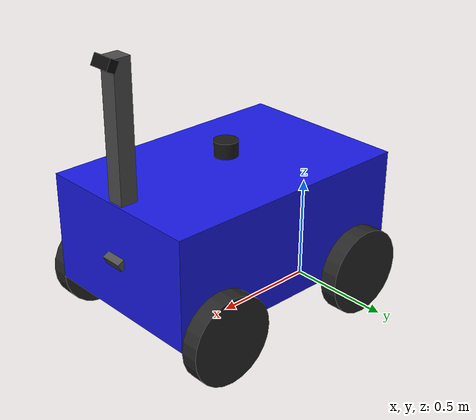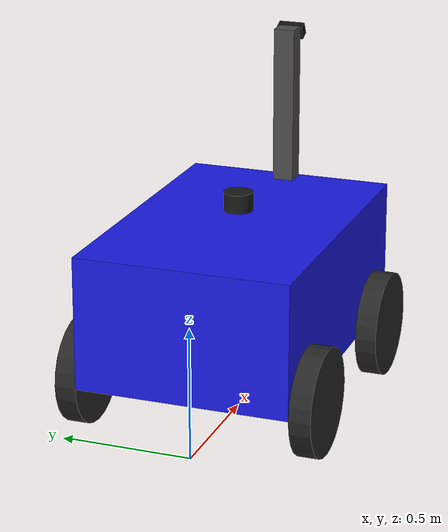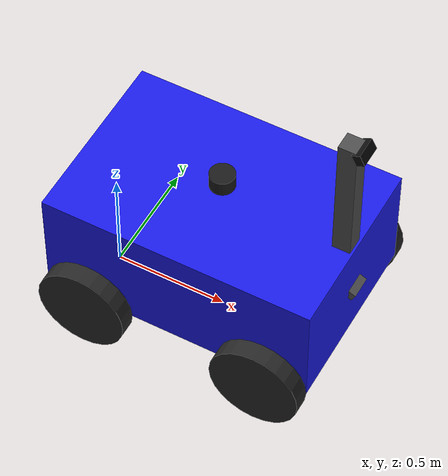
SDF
<?xml version="1.0" ?>
<sdf version="1.10">
  <model name='robot' canonical_link='body'>

    <!-- ===== BODY ===== -->
    <link name='body'>
      <pose relative_to='__model__'>0.5 0 0.5 0 0 0</pose>
      <inertial>
        <mass>50</mass>
        <inertia>
          <ixx>3.708333</ixx><ixy>0</ixy><ixz>0</ixz>
          <iyy>7.041667</iyy><iyz>0</iyz>
          <izz>8.666667</izz>
        </inertia>
      </inertial>
      <visual name='visual'>
        <geometry><box><size>1.2 0.8 0.5</size></box></geometry>
        <material>
          <ambient>0.1 0.1 0.6 1</ambient>
          <diffuse>0.1 0.1 0.9 1</diffuse>
        </material>
      </visual>
      <collision name='collision'>
        <geometry><box><size>1.2 0.8 0.5</size></box></geometry>
      </collision>
    </link>

    <!-- ===== WHEELS ===== -->
    <link name='front_left_wheel'>
      <pose relative_to="body">0.40 0.44 -0.25 -1.5707 0 0</pose>
      <inertial>
        <mass>3</mass>
        <inertia><ixx>0.0316</ixx><ixy>0</ixy><ixz>0</ixz>
                 <iyy>0.0316</iyy><iyz>0</iyz><izz>0.06</izz></inertia>
      </inertial>
      <visual name='visual'>
        <geometry><cylinder><radius>0.2</radius><length>0.08</length></cylinder></geometry>
        <material><ambient>0.15 0.15 0.15 1</ambient><diffuse>0.15 0.15 0.15 1</diffuse></material>
      </visual>
      <collision name='collision'>
        <geometry><cylinder><radius>0.2</radius><length>0.08</length></cylinder></geometry>
        <surface><friction><ode><mu>1.0</mu><mu2>1.0</mu2></ode></friction></surface>
      </collision>
    </link>

    <link name='front_right_wheel'>
      <pose relative_to="body">0.40 -0.44 -0.25 -1.5707 0 0</pose>
      <inertial>
        <mass>3</mass>
        <inertia><ixx>0.0316</ixx><ixy>0</ixy><ixz>0</ixz>
                 <iyy>0.0316</iyy><iyz>0</iyz><izz>0.06</izz></inertia>
      </inertial>
      <visual name='visual'>
        <geometry><cylinder><radius>0.2</radius><length>0.08</length></cylinder></geometry>
        <material><ambient>0.15 0.15 0.15 1</ambient><diffuse>0.15 0.15 0.15 1</diffuse></material>
      </visual>
      <collision name='collision'>
        <geometry><cylinder><radius>0.2</radius><length>0.08</length></cylinder></geometry>
        <surface><friction><ode><mu>1.0</mu><mu2>1.0</mu2></ode></friction></surface>
      </collision>
    </link>

    <link name='back_left_wheel'>
      <pose relative_to="body">-0.40 0.44 -0.25 -1.5707 0 0</pose>
      <inertial>
        <mass>3</mass>
        <inertia><ixx>0.0316</ixx><ixy>0</ixy><ixz>0</ixz>
                 <iyy>0.0316</iyy><iyz>0</iyz><izz>0.06</izz></inertia>
      </inertial>
      <visual name='visual'>
        <geometry><cylinder><radius>0.2</radius><length>0.08</length></cylinder></geometry>
        <material><ambient>0.15 0.15 0.15 1</ambient><diffuse>0.15 0.15 0.15 1</diffuse></material>
      </visual>
      <collision name='collision'>
        <geometry><cylinder><radius>0.2</radius><length>0.08</length></cylinder></geometry>
        <surface><friction><ode><mu>1.0</mu><mu2>1.0</mu2></ode></friction></surface>
      </collision>
    </link>

    <link name='back_right_wheel'>
      <pose relative_to="body">-0.40 -0.44 -0.25 -1.5707 0 0</pose>
      <inertial>
        <mass>3</mass>
        <inertia><ixx>0.0316</ixx><ixy>0</ixy><ixz>0</ixz>
                 <iyy>0.0316</iyy><iyz>0</iyz><izz>0.06</izz></inertia>
      </inertial>
      <visual name='visual'>
        <geometry><cylinder><radius>0.2</radius><length>0.08</length></cylinder></geometry>
        <material><ambient>0.15 0.15 0.15 1</ambient><diffuse>0.15 0.15 0.15 1</diffuse></material>
      </visual>
      <collision name='collision'>
        <geometry><cylinder><radius>0.2</radius><length>0.08</length></cylinder></geometry>
        <surface><friction><ode><mu>1.0</mu><mu2>1.0</mu2></ode></friction></surface>
      </collision>
    </link>

    <!-- ===== CAMERA MAST ===== -->
    <link name='desk_for_depth'>
      <pose relative_to='body'>0.55 0 0.5 0 0 0</pose>
      <inertial>
        <mass>2.5</mass>
        <inertia><ixx>0.1034</ixx><ixy>0</ixy><ixz>0</ixz>
                 <iyy>0.1034</iyy><iyz>0</iyz><izz>0.00267</izz></inertia>
      </inertial>
      <visual name='visual'>
        <geometry><box><size>0.08 0.08 0.7</size></box></geometry>
        <material><ambient>0.3 0.3 0.3 1</ambient><diffuse>0.3 0.3 0.3 1</diffuse></material>
      </visual>
      <collision name='collision'>
        <geometry><box><size>0.08 0.08 0.7</size></box></geometry>
      </collision>
    </link>

    <!-- ===== RGBD CAMERA ===== -->
    <link name='RGBD_camera'>
      <pose relative_to='desk_for_depth'>0.05 0 0.33 0 1.1 0</pose>
      <inertial>
        <mass>0.145</mass>
        <inertia><ixx>0.0000604</ixx><ixy>0</ixy><ixz>0</ixz>
                 <iyy>0.0000604</iyy><iyz>0</iyz><izz>0.0000604</izz></inertia>
      </inertial>
      <visual name='visual'>
        <geometry><box><size>0.05 0.1 0.04</size></box></geometry>
        <material><ambient>0.05 0.05 0.05 1</ambient><diffuse>0.05 0.05 0.05 1</diffuse></material>
      </visual>
      <collision name='collision'>
        <geometry><box><size>0.05 0.1 0.04</size></box></geometry>
      </collision>
      <sensor name="rgbd_sensor" type="rgbd_camera">
        <topic>/rgbd/image</topic>
        <camera>
          <horizontal_fov>1.5</horizontal_fov>
          <image><width>640</width><height>480</height><format>R8G8B8</format></image>
          <clip><near>0.1</near><far>10.0</far></clip>
          <noise><type>gaussian</type><mean>0.0</mean><stddev>0.005</stddev></noise>
        </camera>
        <always_on>true</always_on>
        <update_rate>30</update_rate>
      </sensor>
    </link>

    <!-- ===== NAV CAMERA ===== -->
    <link name='nav_camera'>
      <pose relative_to='body'>0.6 0 0 0 0.45 0</pose>
      <inertial>
        <mass>0.145</mass>
        <inertia><ixx>0.0000604</ixx><ixy>0</ixy><ixz>0</ixz>
                 <iyy>0.0000604</iyy><iyz>0</iyz><izz>0.0000604</izz></inertia>
      </inertial>
      <visual name='visual'>
        <geometry><box><size>0.05 0.1 0.04</size></box></geometry>
        <material><ambient>0.3 0.3 0.3 1</ambient><diffuse>0.3 0.3 0.3 1</diffuse></material>
      </visual>
      <collision name='collision'>
        <geometry><box><size>0.05 0.1 0.04</size></box></geometry>
      </collision>
      <sensor name="nav_sensor" type="camera">
        <topic>/camera/image</topic>
        <camera>
          <horizontal_fov>1.0</horizontal_fov>
          <image><width>640</width><height>480</height><format>R8G8B8</format></image>
          <clip><near>0.1</near><far>100</far></clip>
        </camera>
        <always_on>true</always_on>
        <update_rate>30</update_rate>
      </sensor>
    </link>

    <!-- ===== 2D LIDAR ===== -->
    <link name='lidar_link'>
      <pose relative_to='body'>0 0 0.32 0 0 0</pose>
      <inertial>
        <mass>0.2</mass>
        <inertia><ixx>0.0002</ixx><ixy>0</ixy><ixz>0</ixz>
                 <iyy>0.0002</iyy><iyz>0</iyz><izz>0.0003</izz></inertia>
      </inertial>
      <visual name='visual'>
        <geometry><cylinder><radius>0.055</radius><length>0.07</length></cylinder></geometry>
        <material><ambient>0.1 0.1 0.1 1</ambient><diffuse>0.1 0.1 0.1 1</diffuse></material>
      </visual>
      <collision name='collision'>
        <geometry><cylinder><radius>0.055</radius><length>0.07</length></cylinder></geometry>
      </collision>
      <sensor name="lidar_sensor" type="gpu_lidar">
        <topic>/scan</topic>
        <update_rate>10</update_rate>
        <lidar>
          <scan>
            <horizontal>
              <samples>360</samples>
              <resolution>1</resolution>
              <min_angle>-3.14159265</min_angle>
              <max_angle>3.14159265</max_angle>
            </horizontal>
          </scan>
          <range>
            <min>0.15</min>
            <max>12.0</max>
            <resolution>0.01</resolution>
          </range>
          <noise><type>gaussian</type><mean>0.0</mean><stddev>0.01</stddev></noise>
        </lidar>
        <always_on>true</always_on>
        <visualize>false</visualize>
      </sensor>
    </link>

    <!-- ===== JOINTS ===== -->
    <joint name='front_left_wheel_joint' type='revolute'>
      <pose relative_to='front_left_wheel'/>
      <parent>body</parent><child>front_left_wheel</child>
      <axis>
        <xyz expressed_in='__model__'>0 1 0</xyz>
        <limit><lower>-1.79769e+308</lower><upper>1.79769e+308</upper></limit>
      </axis>
    </joint>
    <joint name='front_right_wheel_joint' type='revolute'>
      <pose relative_to='front_right_wheel'/>
      <parent>body</parent><child>front_right_wheel</child>
      <axis>
        <xyz expressed_in='__model__'>0 1 0</xyz>
        <limit><lower>-1.79769e+308</lower><upper>1.79769e+308</upper></limit>
      </axis>
    </joint>
    <joint name='back_left_wheel_joint' type='revolute'>
      <pose relative_to='back_left_wheel'/>
      <parent>body</parent><child>back_left_wheel</child>
      <axis>
        <xyz expressed_in='__model__'>0 1 0</xyz>
        <limit><lower>-1.79769e+308</lower><upper>1.79769e+308</upper></limit>
      </axis>
    </joint>
    <joint name='back_right_wheel_joint' type='revolute'>
      <pose relative_to='back_right_wheel'/>
      <parent>body</parent><child>back_right_wheel</child>
      <axis>
        <xyz expressed_in='__model__'>0 1 0</xyz>
        <limit><lower>-1.79769e+308</lower><upper>1.79769e+308</upper></limit>
      </axis>
    </joint>
    <joint name="desk_for_depth_joint" type="fixed">
      <parent>body</parent><child>desk_for_depth</child>
    </joint>
    <joint name="RGBD_camera_joint" type="fixed">
      <parent>desk_for_depth</parent><child>RGBD_camera</child>
    </joint>
    <joint name="nav_camera_joint" type="fixed">
      <parent>body</parent><child>nav_camera</child>
    </joint>
    <joint name="lidar_joint" type="fixed">
      <parent>body</parent><child>lidar_link</child>
    </joint>

    <!-- ===== PLUGINS ===== -->

    <!--
      КЛЮЧЕВОЕ ИСПРАВЛЕНИЕ: топики с ведущим / — абсолютные пути.
      Без / Gazebo добавляет /model/robot/ префикс → bridge не находит топик.
    -->
    <plugin filename="gz-sim-diff-drive-system" name="gz::sim::systems::DiffDrive">
      <left_joint>front_left_wheel_joint</left_joint>
      <left_joint>back_left_wheel_joint</left_joint>
      <right_joint>front_right_wheel_joint</right_joint>
      <right_joint>back_right_wheel_joint</right_joint>
      <wheel_separation>0.88</wheel_separation>
      <wheel_radius>0.2</wheel_radius>
      <odom_publish_frequency>30</odom_publish_frequency>
      <topic>/cmd_vel</topic>
      <odom_topic>/odom</odom_topic>
      <tf_topic>/tf</tf_topic>
      <frame_id>odom</frame_id>
      <child_frame_id>base_link</child_frame_id>
      <max_linear_acceleration>2.0</max_linear_acceleration>
      <max_linear_velocity>1.5</max_linear_velocity>
      <min_linear_velocity>-1.5</min_linear_velocity>
      <max_angular_velocity>2.0</max_angular_velocity>
    </plugin>

    <plugin filename="gz-sim-joint-state-publisher-system"
            name="gz::sim::systems::JointStatePublisher">
      <topic>/joint_states</topic>
    </plugin>

  </model>
</sdf>
